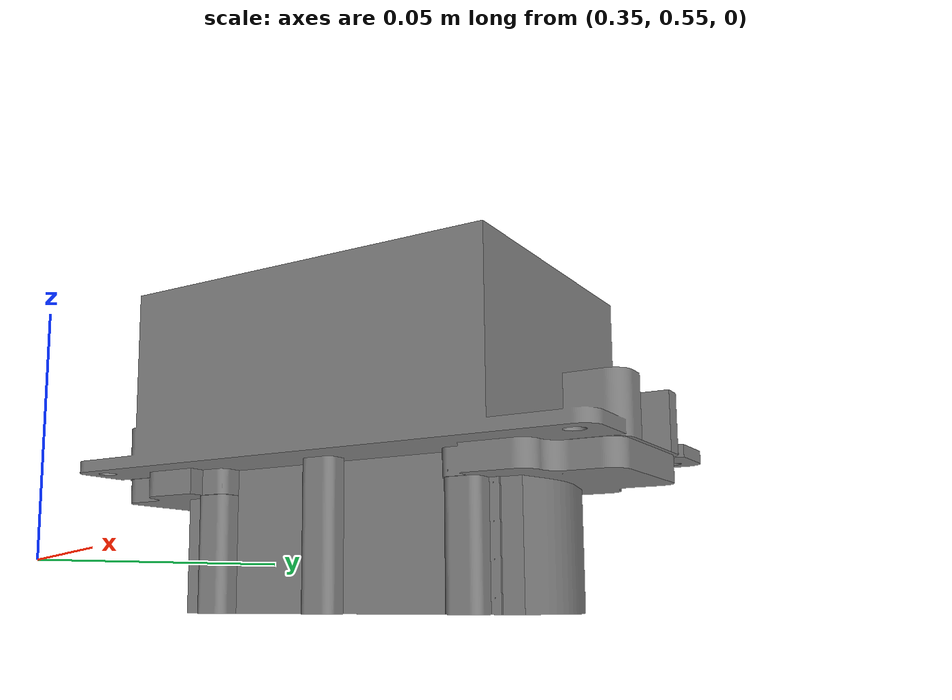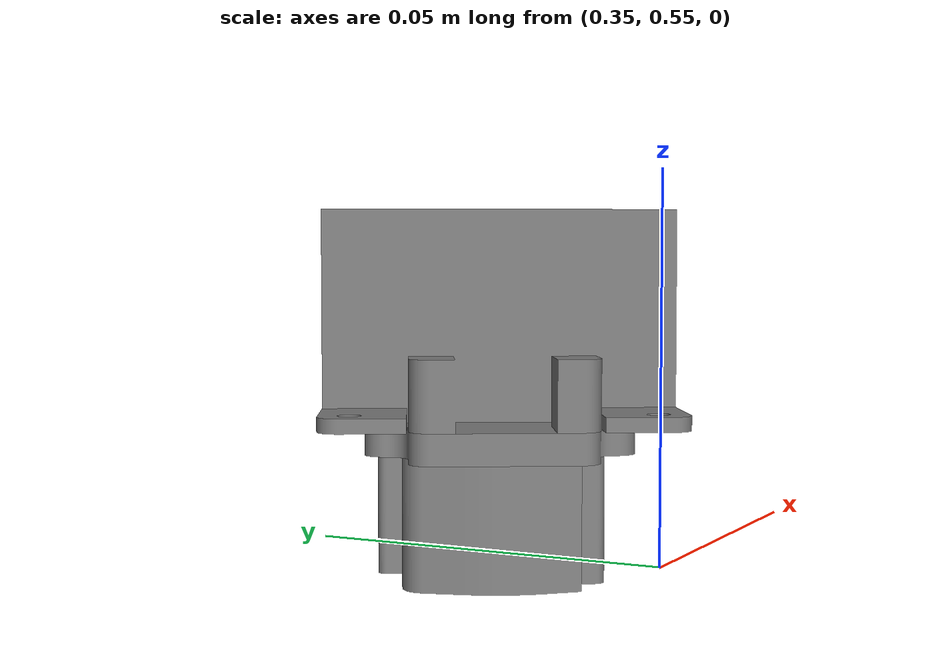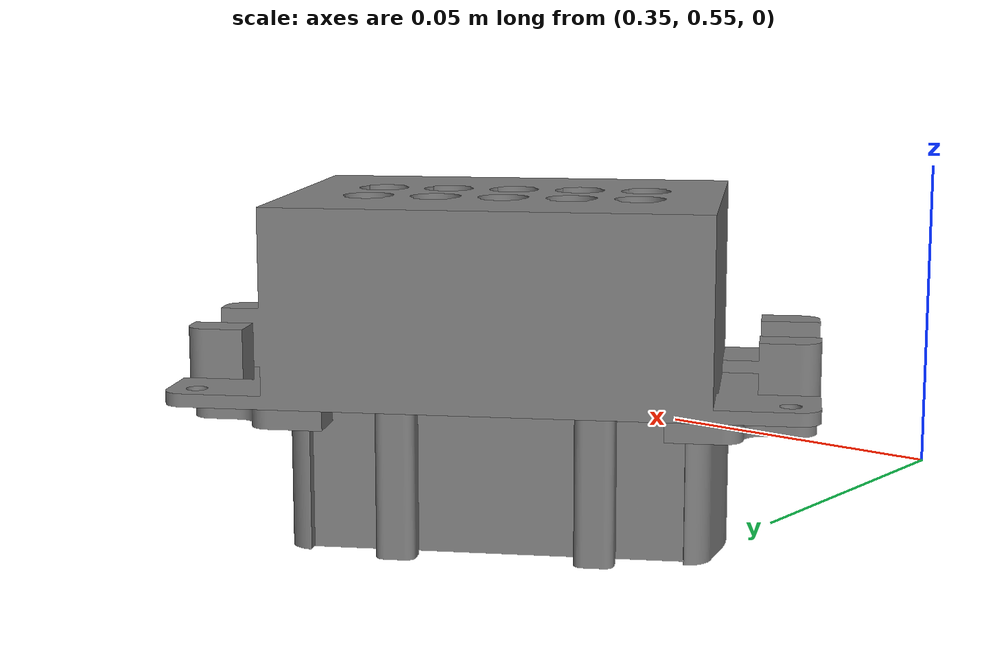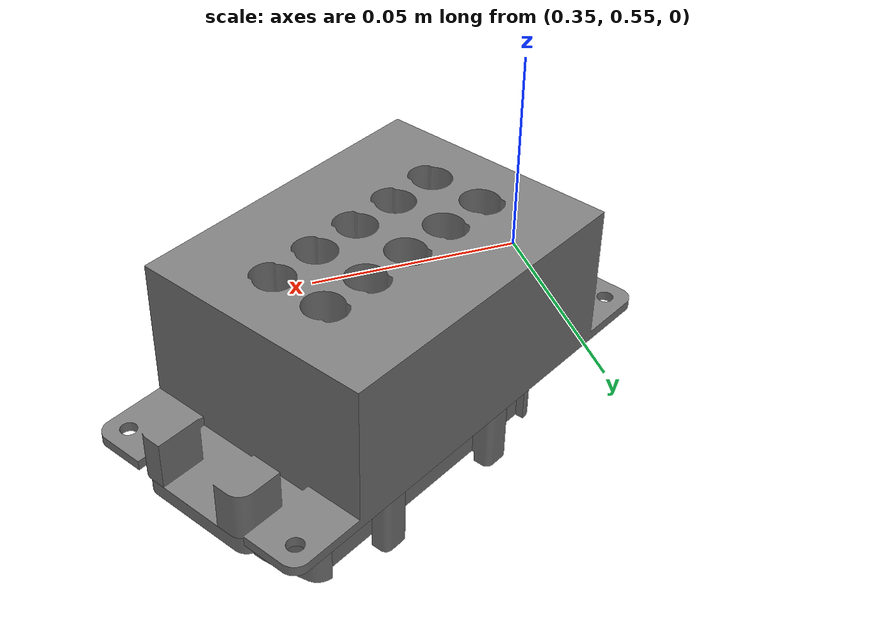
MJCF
<?xml version="1.0" ?>
<mujoco>
   <asset>
      <mesh name="Male_NIST_007"   file="Male_NIST/Male_NIST_007.stl" scale="0.8 0.8 0.8"/>
      <mesh name="Male_NIST_002"   file="Male_NIST/Male_NIST_002.stl" scale="0.8 0.8 0.8"/>
      <mesh name="Male_NIST_006C" file="Male_NIST/Male_NIST_006C.stl" scale="0.8 0.8 0.8"/>
      <mesh name="Male_NIST_005C" file="Male_NIST/Male_NIST_005C.stl" scale="0.8 0.8 0.8"/>
      <mesh name="Male_NIST_006"   file="Male_NIST/Male_NIST_006.stl" scale="0.8 0.8 0.8"/>
      <mesh name="Male_NIST_003"   file="Male_NIST/Male_NIST_003.stl" scale="0.8 0.8 0.8"/>
      <mesh name="Male_NIST_004"   file="Male_NIST/Male_NIST_004.stl" scale="0.8 0.8 0.8"/>
      <mesh name="Male_NIST_001"   file="Male_NIST/Male_NIST_001.stl" scale="0.8 0.8 0.8"/>
      <mesh name="Male_NIST_007C" file="Male_NIST/Male_NIST_007C.stl" scale="0.8 0.8 0.8"/>
      <mesh name="Male_NIST_005"   file="Male_NIST/Male_NIST_005.stl" scale="0.8 0.8 0.8"/>
      <mesh name="Male_NIST_003C" file="Male_NIST/Male_NIST_003C.stl" scale="0.8 0.8 0.8"/>
   </asset>
   <worldbody>
      <body name="nist_male" pos="0.4 0.6 -0.0515" quat="0.966 0 0 0.259">
         <freejoint name="free_joint_male"/>
         <inertial pos="0 0 0" mass="0.01" diaginertia="0.0001 0.0001 0.0001"/>
         <geom name="Male_NIST_007"   type="mesh" mesh="Male_NIST_007"   pos="0 0 0" conaffinity="1" contype="1" solimp="0.99 0.99 0.01" solref="0.01 1" condim="4" friction="3 3 100"/>
         <geom name="Male_NIST_002"   type="mesh" mesh="Male_NIST_002"   pos="0 0 0" conaffinity="1" contype="1" solimp="0.99 0.99 0.01" solref="0.01 1" condim="4" friction="3 3 100"/>
         <geom name="Male_NIST_006C"  type="mesh" mesh="Male_NIST_006C"  pos="0 0 0" conaffinity="1" contype="1" solimp="0.99 0.99 0.01" solref="0.01 1" condim="4" friction="3 3 100"/>
         <geom name="Male_NIST_005C"  type="mesh" mesh="Male_NIST_005C"  pos="0 0 0" conaffinity="1" contype="1" solimp="0.99 0.99 0.01" solref="0.01 1" condim="4" friction="3 3 100"/>
         <geom name="Male_NIST_006"   type="mesh" mesh="Male_NIST_006"   pos="0 0 0" conaffinity="1" contype="1" solimp="0.99 0.99 0.01" solref="0.01 1" condim="4" friction="3 3 100"/>
         <geom name="Male_NIST_003"   type="mesh" mesh="Male_NIST_003"   pos="0 0 0" conaffinity="1" contype="1" solimp="0.99 0.99 0.01" solref="0.01 1" condim="4" friction="3 3 100"/>
         <geom name="Male_NIST_004"   type="mesh" mesh="Male_NIST_004"   pos="0 0 0" conaffinity="1" contype="1" solimp="0.99 0.99 0.01" solref="0.01 1" condim="4" friction="3 3 100"/>
         <geom name="Male_NIST_001"   type="mesh" mesh="Male_NIST_001"   pos="0 0 0" conaffinity="1" contype="1" solimp="0.99 0.99 0.01" solref="0.01 1" condim="4" friction="3 3 100"/>
         <geom name="Male_NIST_007C"  type="mesh" mesh="Male_NIST_007C"  pos="0 0 0" conaffinity="1" contype="1" solimp="0.99 0.99 0.01" solref="0.01 1" condim="4" friction="3 3 100"/>
         <geom name="Male_NIST_005"   type="mesh" mesh="Male_NIST_005"   pos="0 0 0" conaffinity="1" contype="1" solimp="0.99 0.99 0.01" solref="0.01 1" condim="4" friction="3 3 100"/>
         <geom name="Male_NIST_003C"  type="mesh" mesh="Male_NIST_003C"  pos="0 0 0" conaffinity="1" contype="1" solimp="0.99 0.99 0.01" solref="0.01 1" condim="4" friction="3 3 100"/>
      </body>0
   </worldbody>
</mujoco>
